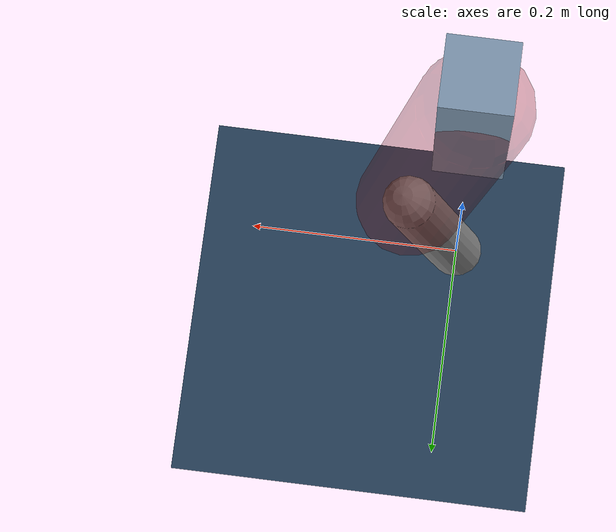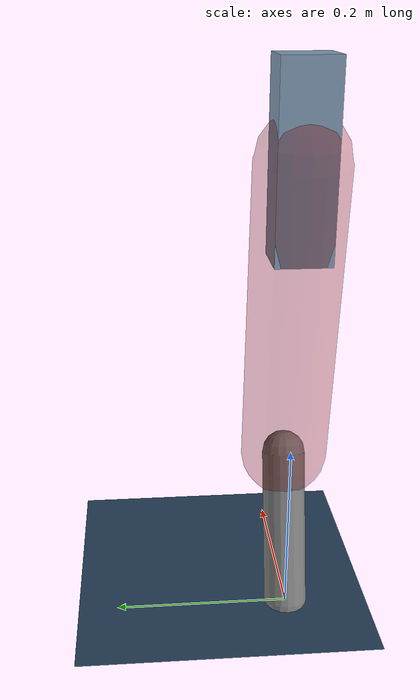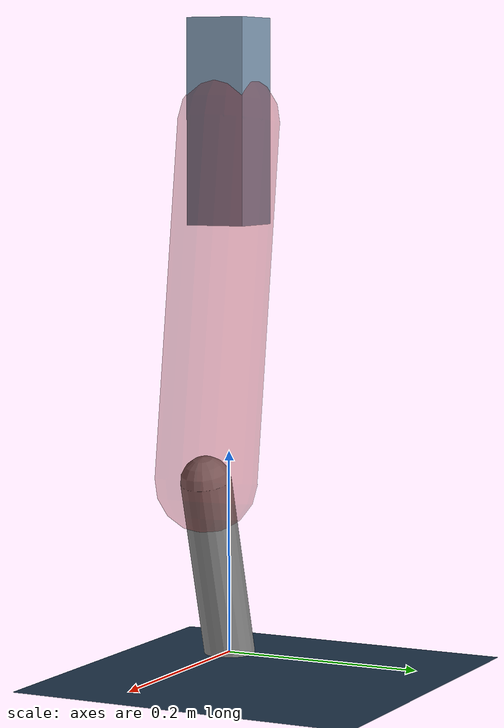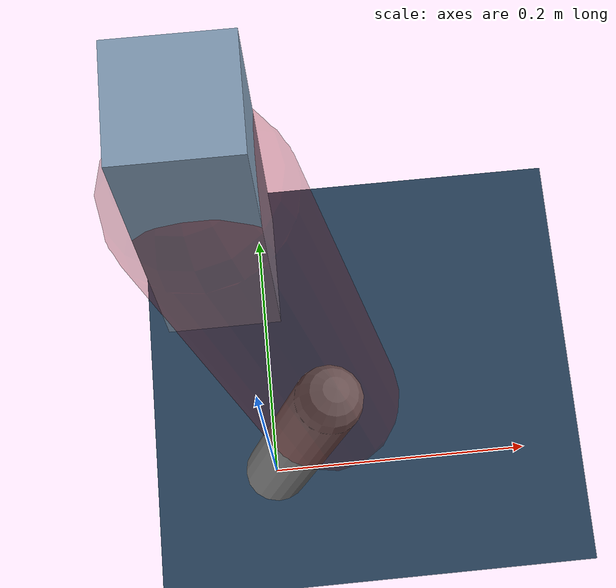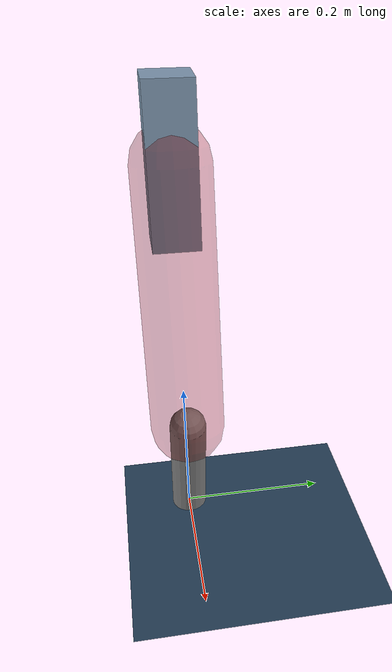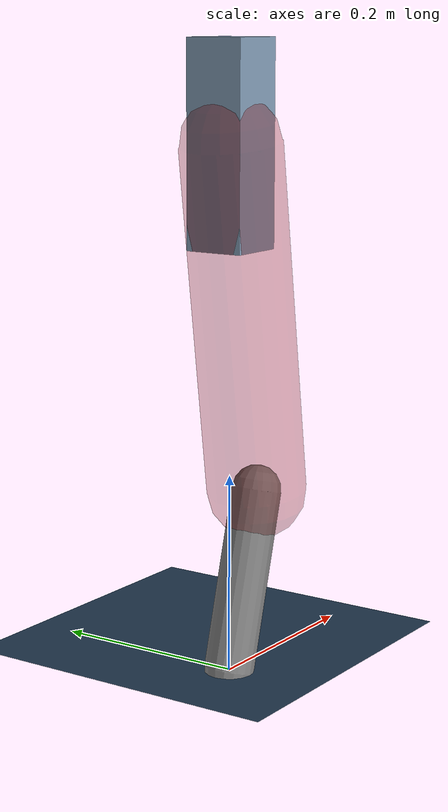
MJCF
<mujoco model="Hopper2D">
	<compiler inertiafromgeom="true" angle="radian" />
	<option timestep="0.001" integrator="implicit" cone="elliptic" solver="Newton" tolerance="1e-10" />

	<default>
		<geom contype="1" conaffinity="1" condim="3" friction="2 0.005 0.0001" solref="0.005 1" />
		<joint limited="true" damping="0.1" />
	</default>

	<asset>
		<texture name="skybox" type="skybox" builtin="gradient" rgb1=".4 .6 .8" rgb2="0 0 0" width="800" height="800" />
		<texture name="grid" type="2d" builtin="checker" rgb1=".1 .2 .3" rgb2=".2 .3 .4" width="300" height="300" mark="edge" markrgb=".2 .3 .4" />
		<material name="ground" texture="grid" texrepeat="1 1" texuniform="true" reflectance="0.1" />
		<material name="leg" rgba="0.5 0.6 0.7 1" />
	</asset>

	<worldbody>

		<geom name="floor" type="plane" size="5 5 0.25" material="ground" />

		<light directional="false" diffuse="0.8 0.8 0.8" specular="0.3 0.3 0.3" pos="0 0 2" dir="0 0 -1" />
		<light mode="targetbodycom" target="base" directional="false" diffuse="0.8 0.8 0.8" specular="0.3 0.3 0.3" pos="0 0 2" dir="0 0 -1" />

		<camera name="fixed" pos="0 -2 1" xyaxes="1 0 0 0 0 1" />
		<camera name="tracking" mode="trackcom" pos="0 -3 1" />

		<body name="root" pos="0 0 0.5224597619512412">
			<joint name="slide_x" type="slide" axis="1 0 0" range="-100 100" />
			<joint name="slide_z" type="slide" axis="0 0 1" range="0 10" />

			<body name="base" pos="0 0 0">
				<geom name="torso" type="box" size="0.03 0.03 0.1" mass="2.409" material="leg" />

				<body name="link1" pos="0 0 0" euler="0 1.4312715611785911 0">
					<joint type="hinge" axis="0 -1 0" pos="0 0 0" name="hinge1" limited="true" range="-3.14 3.14" stiffness="0" damping="0.1" />
					<geom name="thigh" type="capsule" fromto="0 0 0 0.3498402761130549 0 0" size="0.05" rgba="0.5 0 0 0.3" mass="1.126252773116554" />

					<body name="link2" pos="0.3498402761130549 0 0" euler="0 0.40919983723756603 0">
						<joint type="hinge" axis="0 -1 0" pos="0 0 0" name="hinge2" limited="true" range="-3.14 3.14" stiffness="0" damping="0.1" />
						<geom name="shank" type="capsule" fromto="0 0 0 0.18261948583818627 0 0" size="0.025" mass="0.38615753725436763" />

					</body>
				</body>
			</body>
		</body>
	</worldbody>

	<actuator>
		<motor name="torque1" joint="hinge1" ctrlrange="-71.4644213070257 71.4644213070257" ctrllimited="true" gear="1" />
		<motor name="torque2" joint="hinge2" ctrlrange="-115.69155854151413 115.69155854151413" ctrllimited="true" gear="1" />
	</actuator>
</mujoco>
